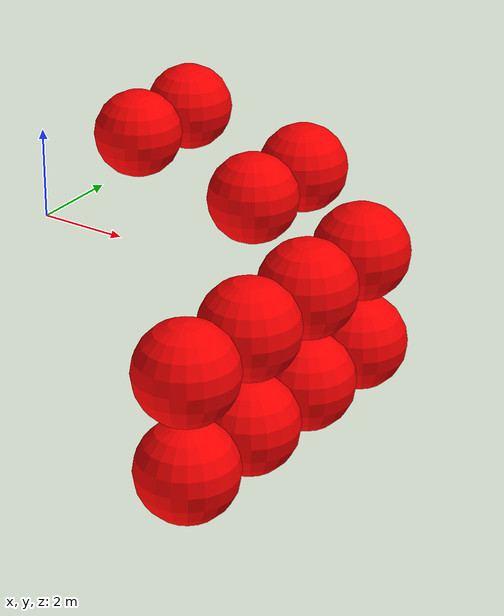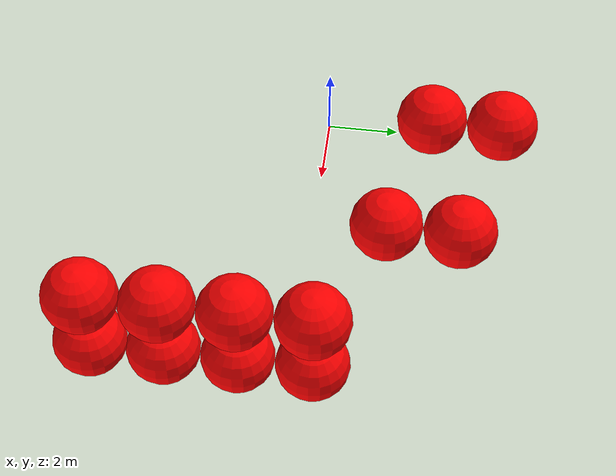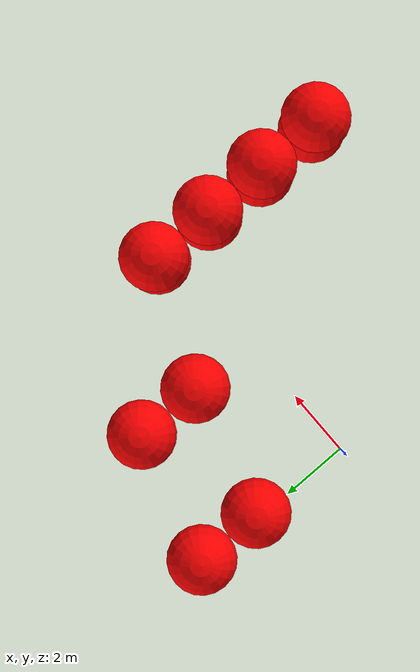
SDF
<sdf version="1.8">
 <world name="3d_world">
  <model name="obstacle_3" canonical_link="obstacle">
   <static>true</static>
   <pose relative_to="world">0.30 2.98 1.00 0 0 0</pose>
   <link name="obstacle">
    <pose relative_to="__model__">0.0 0 0.0 0 0 0</pose>
    <visual name="visual">
     <geometry><sphere><radius>1.00</radius></sphere></geometry>
     <material>
      <ambient>1.0 0.0 0.0 1</ambient>
      <diffuse>1.0 0.0 0.0 1</diffuse>
      <specular>1.0 0.0 0.0 1</specular>
     </material>
    </visual>
    <collision name="collision"><geometry><sphere><radius>1.00</radius></sphere></geometry></collision>
    <enable_gravity>false</enable_gravity>
   </link>
   <plugin filename="ignition-gazebo-velocity-control-system" name="ignition::gazebo::systems::VelocityControl">
    <initial_linear>0.00 0.00 0.00</initial_linear>
    <initial_angular>0 0 0</initial_angular>
   </plugin>
   <plugin filename="ignition-gazebo-odometry-publisher-system" name="ignition::gazebo::systems::OdometryPublisher">
    <dimensions>3</dimensions>
   </plugin>
  </model>
  <model name="obstacle_4" canonical_link="obstacle">
   <static>true</static>
   <pose relative_to="world">0.30 4.98 1.00 0 0 0</pose>
   <link name="obstacle">
    <pose relative_to="__model__">0.0 0 0.0 0 0 0</pose>
    <visual name="visual">
     <geometry><sphere><radius>1.00</radius></sphere></geometry>
     <material>
      <ambient>1.0 0.0 0.0 1</ambient>
      <diffuse>1.0 0.0 0.0 1</diffuse>
      <specular>1.0 0.0 0.0 1</specular>
     </material>
    </visual>
    <collision name="collision"><geometry><sphere><radius>1.00</radius></sphere></geometry></collision>
    <enable_gravity>false</enable_gravity>
   </link>
   <plugin filename="ignition-gazebo-velocity-control-system" name="ignition::gazebo::systems::VelocityControl">
    <initial_linear>0.00 0.00 0.00</initial_linear>
    <initial_angular>0 0 0</initial_angular>
   </plugin>
   <plugin filename="ignition-gazebo-odometry-publisher-system" name="ignition::gazebo::systems::OdometryPublisher">
    <dimensions>3</dimensions>
   </plugin>
  </model>
  <model name="obstacle_13" canonical_link="obstacle">
   <static>true</static>
   <pose relative_to="world">7.64 -5.53 -1.00 0 0 0</pose>
   <link name="obstacle">
    <pose relative_to="__model__">0.0 0 0.0 0 0 0</pose>
    <visual name="visual">
     <geometry><sphere><radius>1.00</radius></sphere></geometry>
     <material>
      <ambient>1.0 0.0 0.0 1</ambient>
      <diffuse>1.0 0.0 0.0 1</diffuse>
      <specular>1.0 0.0 0.0 1</specular>
     </material>
    </visual>
    <collision name="collision"><geometry><sphere><radius>1.00</radius></sphere></geometry></collision>
    <enable_gravity>false</enable_gravity>
   </link>
   <plugin filename="ignition-gazebo-velocity-control-system" name="ignition::gazebo::systems::VelocityControl">
    <initial_linear>0.00 0.00 0.00</initial_linear>
    <initial_angular>0 0 0</initial_angular>
   </plugin>
   <plugin filename="ignition-gazebo-odometry-publisher-system" name="ignition::gazebo::systems::OdometryPublisher">
    <dimensions>3</dimensions>
   </plugin>
  </model>
  <model name="obstacle_14" canonical_link="obstacle">
   <static>true</static>
   <pose relative_to="world">7.64 -3.53 -1.00 0 0 0</pose>
   <link name="obstacle">
    <pose relative_to="__model__">0.0 0 0.0 0 0 0</pose>
    <visual name="visual">
     <geometry><sphere><radius>1.00</radius></sphere></geometry>
     <material>
      <ambient>1.0 0.0 0.0 1</ambient>
      <diffuse>1.0 0.0 0.0 1</diffuse>
      <specular>1.0 0.0 0.0 1</specular>
     </material>
    </visual>
    <collision name="collision"><geometry><sphere><radius>1.00</radius></sphere></geometry></collision>
    <enable_gravity>false</enable_gravity>
   </link>
   <plugin filename="ignition-gazebo-velocity-control-system" name="ignition::gazebo::systems::VelocityControl">
    <initial_linear>0.00 0.00 0.00</initial_linear>
    <initial_angular>0 0 0</initial_angular>
   </plugin>
   <plugin filename="ignition-gazebo-odometry-publisher-system" name="ignition::gazebo::systems::OdometryPublisher">
    <dimensions>3</dimensions>
   </plugin>
  </model>
  <model name="obstacle_15" canonical_link="obstacle">
   <static>true</static>
   <pose relative_to="world">7.64 -1.53 -1.00 0 0 0</pose>
   <link name="obstacle">
    <pose relative_to="__model__">0.0 0 0.0 0 0 0</pose>
    <visual name="visual">
     <geometry><sphere><radius>1.00</radius></sphere></geometry>
     <material>
      <ambient>1.0 0.0 0.0 1</ambient>
      <diffuse>1.0 0.0 0.0 1</diffuse>
      <specular>1.0 0.0 0.0 1</specular>
     </material>
    </visual>
    <collision name="collision"><geometry><sphere><radius>1.00</radius></sphere></geometry></collision>
    <enable_gravity>false</enable_gravity>
   </link>
   <plugin filename="ignition-gazebo-velocity-control-system" name="ignition::gazebo::systems::VelocityControl">
    <initial_linear>0.00 0.00 0.00</initial_linear>
    <initial_angular>0 0 0</initial_angular>
   </plugin>
   <plugin filename="ignition-gazebo-odometry-publisher-system" name="ignition::gazebo::systems::OdometryPublisher">
    <dimensions>3</dimensions>
   </plugin>
  </model>
  <model name="obstacle_16" canonical_link="obstacle">
   <static>true</static>
   <pose relative_to="world">7.64 0.47 -1.00 0 0 0</pose>
   <link name="obstacle">
    <pose relative_to="__model__">0.0 0 0.0 0 0 0</pose>
    <visual name="visual">
     <geometry><sphere><radius>1.00</radius></sphere></geometry>
     <material>
      <ambient>1.0 0.0 0.0 1</ambient>
      <diffuse>1.0 0.0 0.0 1</diffuse>
      <specular>1.0 0.0 0.0 1</specular>
     </material>
    </visual>
    <collision name="collision"><geometry><sphere><radius>1.00</radius></sphere></geometry></collision>
    <enable_gravity>false</enable_gravity>
   </link>
   <plugin filename="ignition-gazebo-velocity-control-system" name="ignition::gazebo::systems::VelocityControl">
    <initial_linear>0.00 0.00 0.00</initial_linear>
    <initial_angular>0 0 0</initial_angular>
   </plugin>
   <plugin filename="ignition-gazebo-odometry-publisher-system" name="ignition::gazebo::systems::OdometryPublisher">
    <dimensions>3</dimensions>
   </plugin>
  </model>
  <model name="obstacle_17" canonical_link="obstacle">
   <static>true</static>
   <pose relative_to="world">7.64 -5.53 1.00 0 0 0</pose>
   <link name="obstacle">
    <pose relative_to="__model__">0.0 0 0.0 0 0 0</pose>
    <visual name="visual">
     <geometry><sphere><radius>1.00</radius></sphere></geometry>
     <material>
      <ambient>1.0 0.0 0.0 1</ambient>
      <diffuse>1.0 0.0 0.0 1</diffuse>
      <specular>1.0 0.0 0.0 1</specular>
     </material>
    </visual>
    <collision name="collision"><geometry><sphere><radius>1.00</radius></sphere></geometry></collision>
    <enable_gravity>false</enable_gravity>
   </link>
   <plugin filename="ignition-gazebo-velocity-control-system" name="ignition::gazebo::systems::VelocityControl">
    <initial_linear>0.00 0.00 0.00</initial_linear>
    <initial_angular>0 0 0</initial_angular>
   </plugin>
   <plugin filename="ignition-gazebo-odometry-publisher-system" name="ignition::gazebo::systems::OdometryPublisher">
    <dimensions>3</dimensions>
   </plugin>
  </model>
  <model name="obstacle_18" canonical_link="obstacle">
   <static>true</static>
   <pose relative_to="world">7.64 -3.53 1.00 0 0 0</pose>
   <link name="obstacle">
    <pose relative_to="__model__">0.0 0 0.0 0 0 0</pose>
    <visual name="visual">
     <geometry><sphere><radius>1.00</radius></sphere></geometry>
     <material>
      <ambient>1.0 0.0 0.0 1</ambient>
      <diffuse>1.0 0.0 0.0 1</diffuse>
      <specular>1.0 0.0 0.0 1</specular>
     </material>
    </visual>
    <collision name="collision"><geometry><sphere><radius>1.00</radius></sphere></geometry></collision>
    <enable_gravity>false</enable_gravity>
   </link>
   <plugin filename="ignition-gazebo-velocity-control-system" name="ignition::gazebo::systems::VelocityControl">
    <initial_linear>0.00 0.00 0.00</initial_linear>
    <initial_angular>0 0 0</initial_angular>
   </plugin>
   <plugin filename="ignition-gazebo-odometry-publisher-system" name="ignition::gazebo::systems::OdometryPublisher">
    <dimensions>3</dimensions>
   </plugin>
  </model>
  <model name="obstacle_19" canonical_link="obstacle">
   <static>true</static>
   <pose relative_to="world">7.64 -1.53 1.00 0 0 0</pose>
   <link name="obstacle">
    <pose relative_to="__model__">0.0 0 0.0 0 0 0</pose>
    <visual name="visual">
     <geometry><sphere><radius>1.00</radius></sphere></geometry>
     <material>
      <ambient>1.0 0.0 0.0 1</ambient>
      <diffuse>1.0 0.0 0.0 1</diffuse>
      <specular>1.0 0.0 0.0 1</specular>
     </material>
    </visual>
    <collision name="collision"><geometry><sphere><radius>1.00</radius></sphere></geometry></collision>
    <enable_gravity>false</enable_gravity>
   </link>
   <plugin filename="ignition-gazebo-velocity-control-system" name="ignition::gazebo::systems::VelocityControl">
    <initial_linear>0.00 0.00 0.00</initial_linear>
    <initial_angular>0 0 0</initial_angular>
   </plugin>
   <plugin filename="ignition-gazebo-odometry-publisher-system" name="ignition::gazebo::systems::OdometryPublisher">
    <dimensions>3</dimensions>
   </plugin>
  </model>
  <model name="obstacle_20" canonical_link="obstacle">
   <static>true</static>
   <pose relative_to="world">7.64 0.47 1.00 0 0 0</pose>
   <link name="obstacle">
    <pose relative_to="__model__">0.0 0 0.0 0 0 0</pose>
    <visual name="visual">
     <geometry><sphere><radius>1.00</radius></sphere></geometry>
     <material>
      <ambient>1.0 0.0 0.0 1</ambient>
      <diffuse>1.0 0.0 0.0 1</diffuse>
      <specular>1.0 0.0 0.0 1</specular>
     </material>
    </visual>
    <collision name="collision"><geometry><sphere><radius>1.00</radius></sphere></geometry></collision>
    <enable_gravity>false</enable_gravity>
   </link>
   <plugin filename="ignition-gazebo-velocity-control-system" name="ignition::gazebo::systems::VelocityControl">
    <initial_linear>0.00 0.00 0.00</initial_linear>
    <initial_angular>0 0 0</initial_angular>
   </plugin>
   <plugin filename="ignition-gazebo-odometry-publisher-system" name="ignition::gazebo::systems::OdometryPublisher">
    <dimensions>3</dimensions>
   </plugin>
  </model>
  <model name="obstacle_21" canonical_link="obstacle">
   <static>false</static>
   <pose relative_to="world">4.06 2.01 0.69 0 0 0</pose>
   <link name="obstacle">
    <pose relative_to="__model__">0.0 0 0.0 0 0 0</pose>
    <visual name="visual">
     <geometry><sphere><radius>1.00</radius></sphere></geometry>
     <material>
      <ambient>1.0 0.0 0.0 1</ambient>
      <diffuse>1.0 0.0 0.0 1</diffuse>
      <specular>1.0 0.0 0.0 1</specular>
     </material>
    </visual>
    <collision name="collision"><geometry><sphere><radius>1.00</radius></sphere></geometry></collision>
    <enable_gravity>false</enable_gravity>
   </link>
   <plugin filename="ignition-gazebo-velocity-control-system" name="ignition::gazebo::systems::VelocityControl">
    <initial_linear>0.00 -1.44 -0.42</initial_linear>
    <initial_angular>0 0 0</initial_angular>
   </plugin>
   <plugin filename="ignition-gazebo-odometry-publisher-system" name="ignition::gazebo::systems::OdometryPublisher">
    <dimensions>3</dimensions>
   </plugin>
  </model>
  <model name="obstacle_22" canonical_link="obstacle">
   <static>false</static>
   <pose relative_to="world">4.06 4.01 0.69 0 0 0</pose>
   <link name="obstacle">
    <pose relative_to="__model__">0.0 0 0.0 0 0 0</pose>
    <visual name="visual">
     <geometry><sphere><radius>1.00</radius></sphere></geometry>
     <material>
      <ambient>1.0 0.0 0.0 1</ambient>
      <diffuse>1.0 0.0 0.0 1</diffuse>
      <specular>1.0 0.0 0.0 1</specular>
     </material>
    </visual>
    <collision name="collision"><geometry><sphere><radius>1.00</radius></sphere></geometry></collision>
    <enable_gravity>false</enable_gravity>
   </link>
   <plugin filename="ignition-gazebo-velocity-control-system" name="ignition::gazebo::systems::VelocityControl">
    <initial_linear>0.00 -1.44 -0.42</initial_linear>
    <initial_angular>0 0 0</initial_angular>
   </plugin>
   <plugin filename="ignition-gazebo-odometry-publisher-system" name="ignition::gazebo::systems::OdometryPublisher">
    <dimensions>3</dimensions>
   </plugin>
  </model>
 </world>
</sdf>
